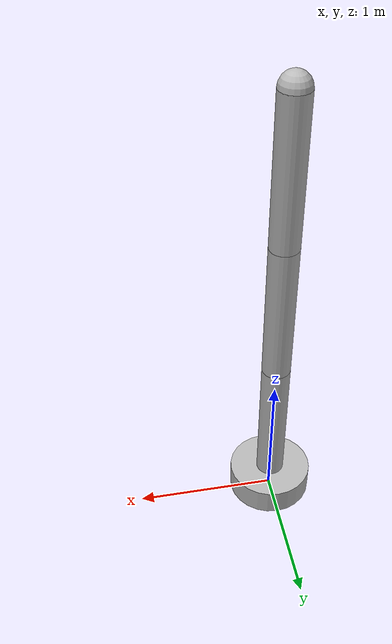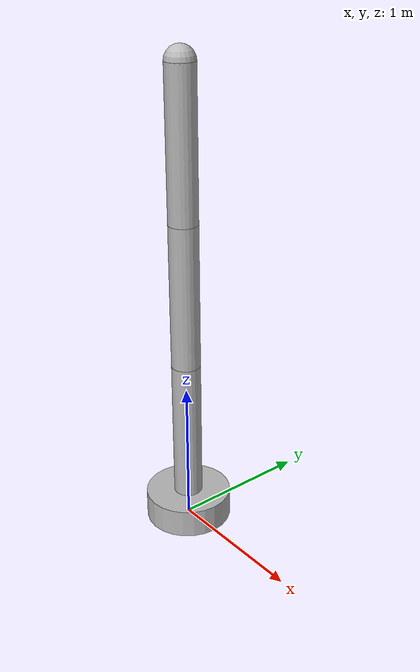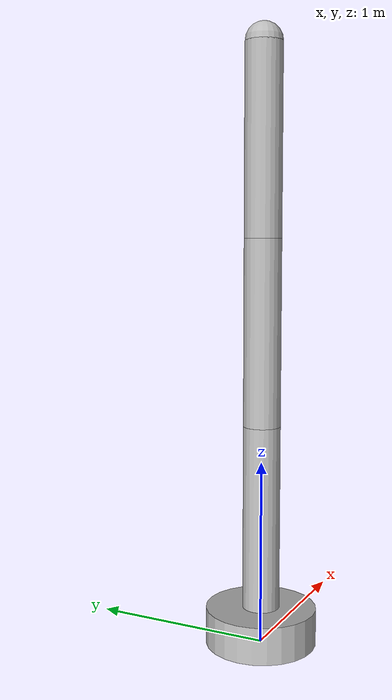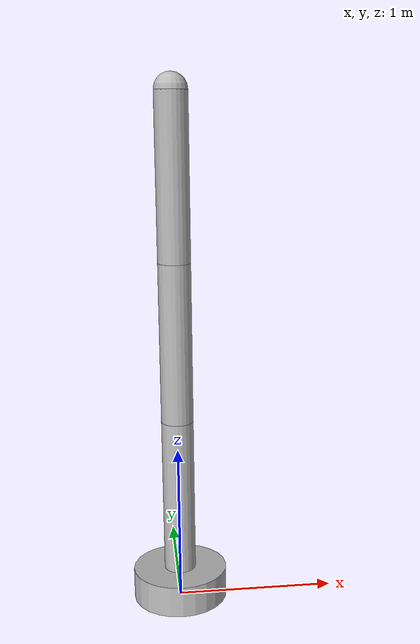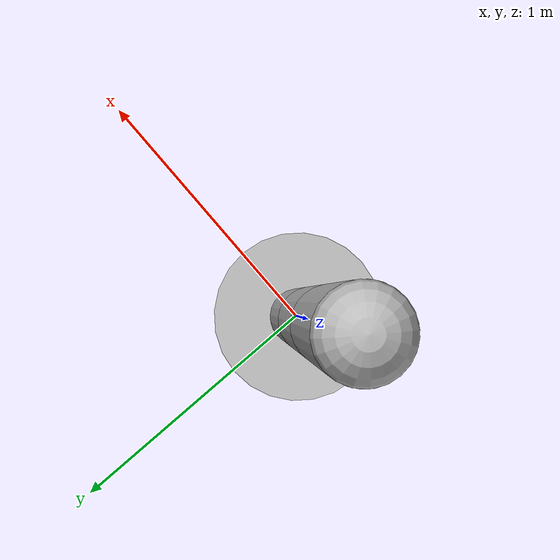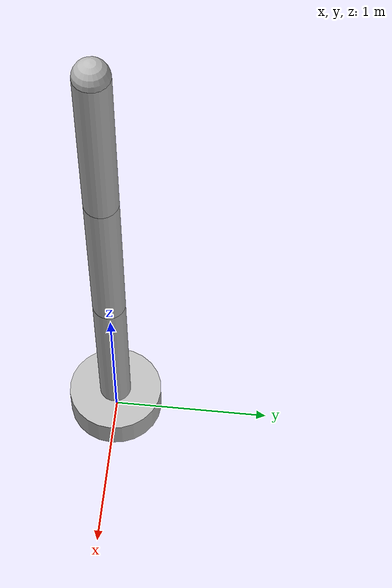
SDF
<sdf version='1.6'>
  <model name='simpleArmDualIMU'>
    <link name='base'>
      <pose frame=''>0 0 0 0 -0 0</pose>
      <inertial>
        <pose frame=''>0 0 0.1 0 -0 0</pose>
        <mass>50</mass>
        <inertia>
          <ixx>1.292</ixx>
          <ixy>0</ixy>
          <ixz>0</ixz>
          <iyy>1.292</iyy>
          <iyz>0</iyz>
          <izz>2.25</izz>
        </inertia>
      </inertial>
      <visual name='base_visual'>
        <pose frame=''>0 0 0.1 0 -0 0</pose>
        <geometry>
          <cylinder>
            <length>0.2</length>
            <radius>0.3</radius>
          </cylinder>
        </geometry>
      </visual>
      <sensor name='imu' type='imu'>
        <imu>
          <angular_velocity>
            <x>
              <noise type='gaussian'/>
            </x>
            <y>
              <noise type='gaussian'/>
            </y>
            <z>
              <noise type='gaussian'/>
            </z>
          </angular_velocity>
          <linear_acceleration>
            <x>
              <noise type='gaussian'/>
            </x>
            <y>
              <noise type='gaussian'/>
            </y>
            <z>
              <noise type='gaussian'/>
            </z>
          </linear_acceleration>
        </imu>
        <pose frame=''>0 0 0 0 -0 0</pose>
      </sensor>
    </link>
    <link name='arm_1'>
      <pose frame=''>0 0 0.2 0 -0 0</pose>
      <inertial>
        <pose frame=''>0 0 0.5 0 -0 0</pose>
        <mass>1</mass>
        <inertia>
          <ixx>0.0858</ixx>
          <ixy>0</ixy>
          <ixz>0</ixz>
          <iyy>0.0858</iyy>
          <iyz>0</iyz>
          <izz>0.005</izz>
        </inertia>
      </inertial>
      <visual name='arm_1_visual'>
        <pose frame=''>0 0 0.5 0 -0 0</pose>
        <geometry>
          <cylinder>
            <length>1</length>
            <radius>0.1</radius>
          </cylinder>
        </geometry>
      </visual>
    </link>
    <joint name='base_arm_1' type='revolute'>
      <child>arm_1</child>
      <parent>base</parent>
      <axis>
        <xyz>0 0 1</xyz>
        <limit>
          <lower>0</lower>
          <upper>0</upper>
          <effort>10000</effort>
          <velocity>10000</velocity>
        </limit>
        <dynamics>
          <spring_reference>0</spring_reference>
          <spring_stiffness>0</spring_stiffness>
        </dynamics>
        <use_parent_model_frame>1</use_parent_model_frame>
      </axis>
    </joint>
    <link name='arm_2'>
      <pose frame=''>0 0 1.2 0 -0 0</pose>
      <inertial>
        <pose frame=''>0 0 0.5 0 -0 0</pose>
        <mass>1</mass>
        <inertia>
          <ixx>0.0858</ixx>
          <ixy>0</ixy>
          <ixz>0</ixz>
          <iyy>0.0858</iyy>
          <iyz>0</iyz>
          <izz>0.005</izz>
        </inertia>
      </inertial>
      <visual name='arm_2_visual'>
        <pose frame=''>0 0 0.5 0 -0 0</pose>
        <geometry>
          <cylinder>
            <length>1</length>
            <radius>0.1</radius>
          </cylinder>
        </geometry>
      </visual>
    </link>
    <joint name='arm_1_arm_2' type='revolute'>
      <child>arm_2</child>
      <parent>arm_1</parent>
      <axis>
        <xyz>0 1 0</xyz>
        <limit>
          <lower>0</lower>
          <upper>0</upper>
          <effort>10000</effort>
          <velocity>10000</velocity>
        </limit>
        <dynamics>
          <spring_reference>0</spring_reference>
          <spring_stiffness>0</spring_stiffness>
        </dynamics>
        <use_parent_model_frame>1</use_parent_model_frame>
      </axis>
    </joint>
    <link name='arm_3'>
      <pose frame=''>0 0 2.2 0 -0 0</pose>
      <inertial>
        <pose frame=''>0 0 0.5 0 -0 0</pose>
        <mass>1</mass>
        <inertia>
          <ixx>0.0858</ixx>
          <ixy>0</ixy>
          <ixz>0</ixz>
          <iyy>0.0858</iyy>
          <iyz>0</iyz>
          <izz>0.005</izz>
        </inertia>
      </inertial>
      <visual name='arm_3_visual'>
        <pose frame=''>0 0 0.5 0 -0 0</pose>
        <geometry>
          <cylinder>
            <length>1</length>
            <radius>0.1</radius>
          </cylinder>
        </geometry>
      </visual>
      <visual name='arm_3_fixed_joint_lump__imu_link_visual_1'>
        <pose frame=''>0 0 1 0 -0 0</pose>
        <geometry>
          <sphere>
            <radius>0.1</radius>
          </sphere>
        </geometry>
        <material>
          <script>
            <uri>__default__</uri>
            <name>__default__</name>
          </script>
        </material>
      </visual>
      <gravity>1</gravity>
      <velocity_decay/>
      <sensor name='imu' type='imu'>
        <imu>
          <angular_velocity>
            <x>
              <noise type='gaussian'/>
            </x>
            <y>
              <noise type='gaussian'/>
            </y>
            <z>
              <noise type='gaussian'/>
            </z>
          </angular_velocity>
          <linear_acceleration>
            <x>
              <noise type='gaussian'/>
            </x>
            <y>
              <noise type='gaussian'/>
            </y>
            <z>
              <noise type='gaussian'/>
            </z>
          </linear_acceleration>
        </imu>
        <pose frame=''>0 0 1 0 -0 0</pose>
      </sensor>
    </link>
    <joint name='arm_2_arm_3' type='revolute'>
      <child>arm_3</child>
      <parent>arm_2</parent>
      <axis>
        <xyz>0 1 0</xyz>
        <limit>
          <lower>0</lower>
          <upper>0</upper>
          <effort>10000</effort>
          <velocity>10000</velocity>
        </limit>
        <dynamics>
          <spring_reference>0</spring_reference>
          <spring_stiffness>0</spring_stiffness>
        </dynamics>
        <use_parent_model_frame>1</use_parent_model_frame>
      </axis>
    </joint>
  </model>
</sdf>
